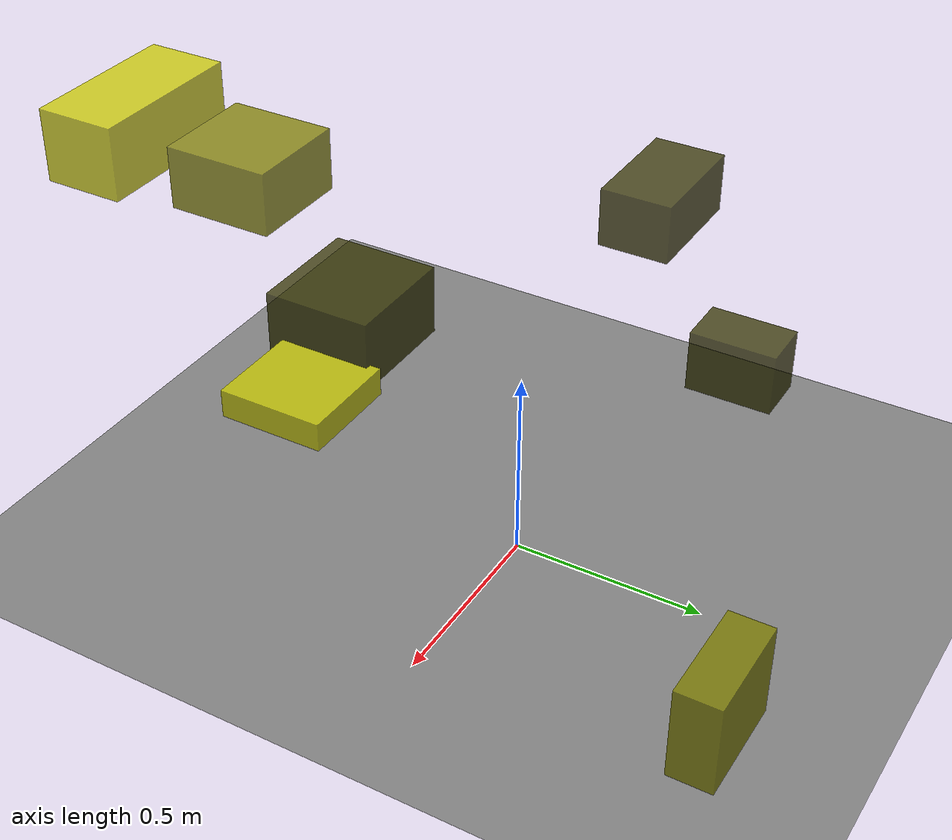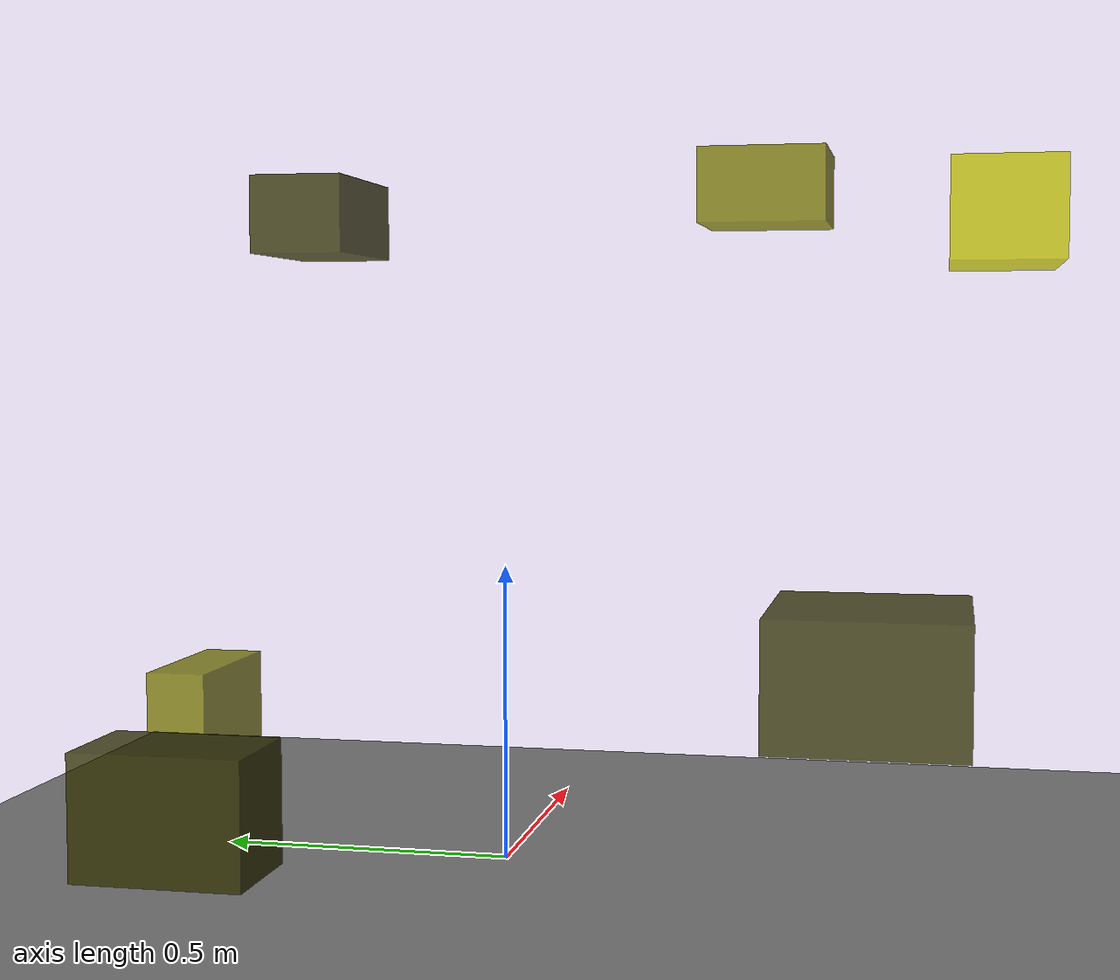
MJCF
<?xml version="1.0"?>
<mujoco model="obstacle_scene">
  <compiler angle="radian" coordinate="local"/>
  <option timestep="0.001" gravity="0 0 -9.81"/>

  <asset>
    <material name="obstacle_mat" rgba="0.8 0.8 0.0 0.8"/>
    <material name="ground_mat" rgba="0.5 0.5 0.5 1"/>
  </asset>

  <worldbody>
    <!-- Ground plane -->
    <geom name="ground" type="plane" size="3 3 0.1" material="ground_mat"/>

    <!-- Obstacles -->
    <body name="obstacle_0" pos="0.020701 0.327970 1.089389">
      <geom name="obs_0" type="box" size="0.131209 0.078041 0.064422" rgba="0.2 0.2 0.0 0.8"/>
    </body>
    <body name="obstacle_1" pos="0.458967 -0.392223 1.168224">
      <geom name="obs_1" type="box" size="0.116321 0.117004 0.068899" rgba="0.5 0.5 0.0 0.8"/>
    </body>
    <body name="obstacle_2" pos="0.304886 -0.824952 1.100578">
      <geom name="obs_2" type="box" size="0.194576 0.095589 0.086767" rgba="0.8 0.8 0.0 0.8"/>
    </body>
    <body name="obstacle_3" pos="-0.710528 0.279547 0.246120">
      <geom name="obs_3" type="box" size="0.074066 0.121076 0.087732" rgba="0.2 0.2 0.0 0.8"/>
    </body>
    <body name="obstacle_4" pos="0.366612 0.703067 0.127586">
      <geom name="obs_4" type="box" size="0.144373 0.057744 0.125696" rgba="0.5 0.5 0.0 0.8"/>
    </body>
    <body name="obstacle_5" pos="0.078597 -0.584127 0.310188">
      <geom name="obs_5" type="box" size="0.141126 0.145036 0.039164" rgba="0.8 0.8 0.0 0.8"/>
    </body>
    <body name="obstacle_6" pos="-0.211762 -0.620504 0.377091">
      <geom name="obs_6" type="box" size="0.165167 0.151348 0.099562" rgba="0.2 0.2 0.0 0.8"/>
    </body>
  </worldbody>
</mujoco>
